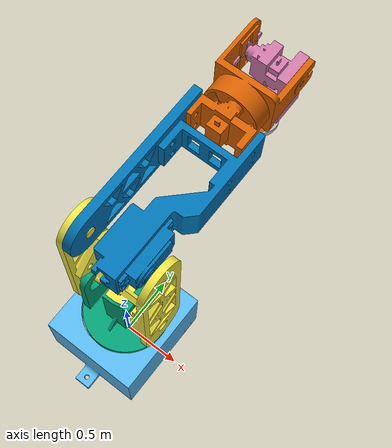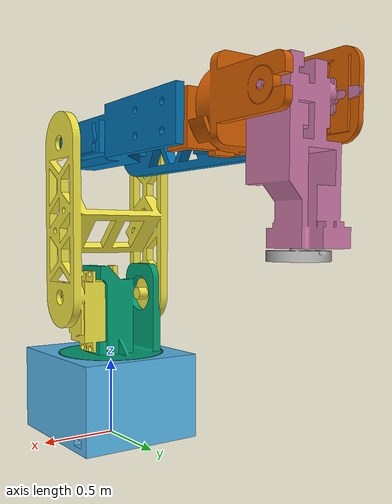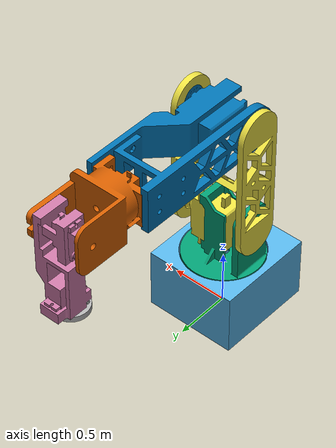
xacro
<?xml version="1.0" encoding="UTF-8"?>

<robot xmlns:xacro="http://www.ros.org/wiki/xacro" name="block-robotics">
	<xacro:macro name="defaultInertial" params="mass">
		<inertial>
			<mass value="${mass}"/>
			<inertia ixx="1" ixy="0" ixz="0" iyy="1" iyz="0" izz="1"/>
		</inertial>
	</xacro:macro>

	<xacro:macro name="defaultTransmission" params="number">
		<transmission name="transmission_${number}">
			<type>
				transmission_interface/SimpleTransmission
			</type>
			<joint name="joint_${number}">
				<hardwareInterface>
					hardware_interface/PositionJointInterface
				</hardwareInterface>
			</joint>
			<actuator name="motor_${number}">
				<hardwareInterface>
					hardware_interface/PositionJointInterface
				</hardwareInterface>
				<mechanicalReduction>
					1
				</mechanicalReduction>
			</actuator>
		</transmission>
	</xacro:macro>

	<link name="world" />

	<link name="base_link">
		<visual>
			<origin rpy="${pi/2} 0 0" xyz="0 0 0"/>
			<geometry>
				<mesh filename="package://robotic_arm_model/mesh/base_link.stl" scale="0.01 0.01 0.01"/>
			</geometry>
		</visual>
		<collision>
			<origin rpy="${pi/2} 0 0" xyz="0 0 0"/>
			<geometry>
				<mesh filename="package://robotic_arm_model/mesh/base_link.stl" scale="0.01 0.01 0.01"/>
			</geometry>
		</collision>
		<xacro:defaultInertial mass="1.0"/>
	</link>

	<joint name="virtual_joint" type="fixed">
		<parent link="world" />
		<child link="base_link" />
		<origin rpy="0 0 0" xyz="0 0 0" />
	</joint>

	<link name="link_1">
		<xacro:defaultInertial mass="0.25"/>
		<visual>
			<origin rpy="${pi/2} 0 0" xyz="0 0 0"/>
			<geometry>
				<mesh filename="package://robotic_arm_model/mesh/link_1.stl" scale="0.01 0.01 0.01"/>
			</geometry>
		</visual>
		<collision>
			<origin rpy="${pi/2} 0 0" xyz="0 0 0"/>
			<geometry>
				<mesh filename="package://robotic_arm_model/mesh/link_1.stl" scale="0.01 0.01 0.01"/>
			</geometry>
		</collision>
	</link>

	<joint name="joint_1" type="revolute">
		<parent link="base_link" />
		<child link="link_1" />
		<origin rpy="0 0 0" xyz="0 0 0.5" />
		<axis xyz="0 0 1"/>
		<limit lower="-${pi/2}" upper="${pi/2}" effort="30" velocity="10" />
	</joint>

	<link name="link_2">
		<xacro:defaultInertial mass="0.3"/>
		<visual>
			<origin rpy="${pi/2} 0 0" xyz="0 -0.21078 -0.28624"/>
			<geometry>
				<mesh filename="package://robotic_arm_model/mesh/link_2.stl" scale="0.01 0.01 0.01"/>
			</geometry>
		</visual>
		<collision>
			<origin rpy="${pi/2} 0 0" xyz="0 -0.21078 -0.28624"/>
			<geometry>
				<mesh filename="package://robotic_arm_model/mesh/link_2.stl" scale="0.01 0.01 0.01"/>
			</geometry>
		</collision>
	</link>

	<joint name="joint_2" type="revolute">
		<parent link="link_1" />
		<child link="link_2" />
		<origin rpy="0 0 0" xyz="0 0 0.45" />
		<axis xyz="1 0 0"/>
		<limit lower="-${pi/2}" upper="${pi/2}" effort="30" velocity="10" />
	</joint>

	<link name="link_3">
		<xacro:defaultInertial mass="0.3"/>
		<visual>
			<origin rpy="${pi/2} 0 0" xyz="0.03556 0 0"/>
			<geometry>
				<mesh filename="package://robotic_arm_model/mesh/link_3.stl" scale="0.01 0.01 0.01"/>
			</geometry>
		</visual>
		<collision>
			<origin rpy="${pi/2} 0 0" xyz="0.03556 0 0"/>
			<geometry>
				<mesh filename="package://robotic_arm_model/mesh/link_3.stl" scale="0.01 0.01 0.01"/>
			</geometry>
		</collision>
	</link>

	<joint name="joint_3" type="revolute">
		<parent link="link_2" />
		<child link="link_3" />
		<origin rpy="0 0 0" xyz="0 0 1" />
		<axis xyz="1 0 0"/>
		<limit lower="-${pi/5}" upper="${4*pi/5}" effort="30" velocity="10" />
	</joint>

	<link name="link_4">
		<xacro:defaultInertial mass="0.25"/>
		<visual>
			<origin rpy="0 0 0" xyz="-0.2225 -0.35266 0.057835"/>
			<geometry>
				<mesh filename="package://robotic_arm_model/mesh/link_4.stl" scale="0.01 0.01 0.01"/>
			</geometry>
		</visual>
		<collision>
			<origin rpy="0 0 0" xyz="-0.2225 -0.35266 0.057835"/>
			<geometry>
				<mesh filename="package://robotic_arm_model/mesh/link_4.stl" scale="0.01 0.01 0.01"/>
			</geometry>
		</collision>
	</link>

	<joint name="joint_4" type="revolute">
		<parent link="link_3" />
		<child link="link_4" />
		<origin rpy="0 0 0" xyz="0 1.33701 0.057835" />
		<axis xyz="0 1 0"/>
		<limit lower="-${pi/2}" upper="${pi/2}" effort="30" velocity="10" />
	</joint>

	<link name="link_5">
		<xacro:defaultInertial mass="0.2"/>
		<visual>
			<origin rpy="0 ${pi} 0" xyz="0.0885 -0.32762 -0.5529"/>
			<geometry>
				<mesh filename="package://robotic_arm_model/mesh/link_5.stl" scale="0.01 0.01 0.01"/>
			</geometry>
		</visual>
		<collision>
			<origin rpy="0 ${pi} 0" xyz="0.0885 -0.32762 -0.5529"/>
			<geometry>
				<mesh filename="package://robotic_arm_model/mesh/link_5.stl" scale="0.01 0.01 0.01"/>
			</geometry>
		</collision>
	</link>

	<joint name="joint_5" type="revolute">
		<parent link="link_4" />
		<child link="link_5" />
		<origin rpy="0 0 0" xyz="0 0.4 0" />
		<axis xyz="1 0 0"/>
		<limit lower="0" upper="${pi}" effort="30" velocity="10" />
	</joint>

	<link name="end_effector_flange">
		<xacro:defaultInertial mass="0.01"/>
		<visual>
			<origin rpy="${pi/2} 0 0" xyz="0 0 -0.1644"/>
			<geometry>
				<mesh filename="package://robotic_arm_model/mesh/link_6.stl" scale="0.01 0.01 0.01"/>
			</geometry>
		</visual>
		<collision>
			<origin rpy="${pi/2} 0 0" xyz="0 0 -0.1644"/>
			<geometry>
				<mesh filename="package://robotic_arm_model/mesh/link_6.stl" scale="0.01 0.01 0.01"/>
			</geometry>
		</collision>
	</link>

	<joint name="joint_6" type="revolute">
		<parent link="link_5" />
		<child link="end_effector_flange" />
		<origin rpy="0 0 0" xyz="0 0 -0.73035" />
		<axis xyz="0 0 1"/>
		<limit lower="-${pi/2}" upper="${pi/2}" effort="30" velocity="10" />
	</joint>

	<xacro:defaultTransmission number="1"/>
	<xacro:defaultTransmission number="2"/>
	<xacro:defaultTransmission number="3"/>
	<xacro:defaultTransmission number="4"/>
	<xacro:defaultTransmission number="5"/>
	<xacro:defaultTransmission number="6"/>

	<gazebo>
		<plugin name="gazebo_ros_control" filename="libgazebo_ros_control.so">s
			<robotNamespace>/mecabot</robotNamespace>
			<robotSimType>gazebo_ros_control/DefaultRobotHWSim</robotSimType>
			<legacyModeNS>true</legacyModeNS>
		</plugin>
	</gazebo>
</robot>
